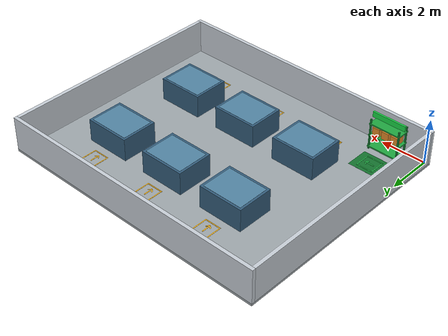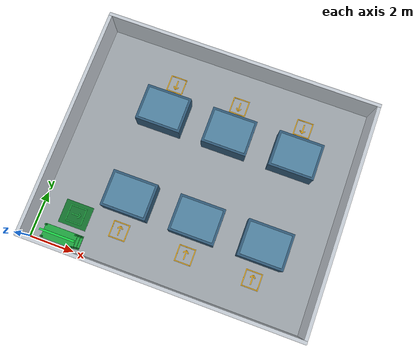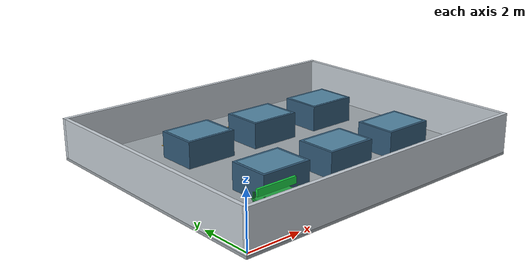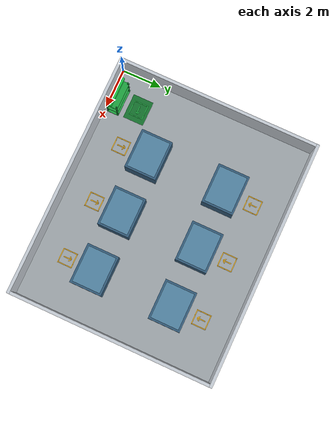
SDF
<?xml version='1.0' encoding='utf-8'?>
<sdf version="1.7">
  <world name="workshop_delivery_v1">
    <!-- Ground truth for experiment evaluation only; never used by AMCL or Nav2. -->
    <plugin name="gazebo_ros_state" filename="libgazebo_ros_state.so">
      <ros><namespace>/gazebo</namespace></ros>
      <update_rate>20.0</update_rate>
    </plugin>
    <!-- Two rows of three machines: A/B/C at y=3, D/E/F at y=7. Six visual-only docks correspond one-to-one. Material rack at (1.5,0.45); depot/spawn at (1.5,1.5). Coordinates use world frame. -->
    <gravity>0 0 -9.81</gravity>
    <physics name="default_physics" type="ode">
      <max_step_size>0.001</max_step_size>
      <real_time_update_rate>1000</real_time_update_rate>
    </physics>
    <scene>
      <ambient>0.55 0.55 0.55 1</ambient>
      <background>0.75 0.80 0.85 1</background>
      <shadows>true</shadows>
    </scene>
    <light name="sun" type="directional">
      <pose>0 0 12 0 0 0</pose>
      <diffuse>0.85 0.85 0.85 1</diffuse>
      <specular>0.2 0.2 0.2 1</specular>
      <direction>-0.4 0.2 -0.9</direction>
      <cast_shadows>true</cast_shadows>
      <attenuation>
        <range>1000</range>
        <constant>0.9</constant>
        <linear>0.01</linear>
        <quadratic>0.001</quadratic>
      </attenuation>
    </light>
    <gui fullscreen="0">
      <camera name="overview">
        <pose>15 -8 16 0 0.82 2.18</pose>
        <view_controller>orbit</view_controller>
      </camera>
    </gui>
    <model name="workshop_floor">
      <static>true</static>
      <pose>6 5 -0.05 0 0 0</pose>
      <link name="body">
        <collision name="slab_collision">
          <pose>0 0 0 0 0 0</pose>
          <geometry>
            <box>
              <size>12.3 10.3 0.1</size>
            </box>
          </geometry>
        </collision>
        <visual name="slab">
          <pose>0 0 0 0 0 0</pose>
          <geometry>
            <box>
              <size>12.3 10.3 0.1</size>
            </box>
          </geometry>
          <material>
            <ambient>0.62 0.65 0.67 1</ambient>
            <diffuse>0.62 0.65 0.67 1</diffuse>
          </material>
        </visual>
      </link>
    </model>
    <model name="wall_south">
      <static>true</static>
      <pose>6 -0.075 0.75 0 0 0</pose>
      <link name="body">
        <collision name="wall_collision">
          <pose>0 0 0 0 0 0</pose>
          <geometry>
            <box>
              <size>12.3 0.15 1.5</size>
            </box>
          </geometry>
        </collision>
        <visual name="wall">
          <pose>0 0 0 0 0 0</pose>
          <geometry>
            <box>
              <size>12.3 0.15 1.5</size>
            </box>
          </geometry>
          <material>
            <ambient>0.78 0.81 0.84 1</ambient>
            <diffuse>0.78 0.81 0.84 1</diffuse>
          </material>
        </visual>
      </link>
    </model>
    <model name="wall_north">
      <static>true</static>
      <pose>6 10.075 0.75 0 0 0</pose>
      <link name="body">
        <collision name="wall_collision">
          <pose>0 0 0 0 0 0</pose>
          <geometry>
            <box>
              <size>12.3 0.15 1.5</size>
            </box>
          </geometry>
        </collision>
        <visual name="wall">
          <pose>0 0 0 0 0 0</pose>
          <geometry>
            <box>
              <size>12.3 0.15 1.5</size>
            </box>
          </geometry>
          <material>
            <ambient>0.78 0.81 0.84 1</ambient>
            <diffuse>0.78 0.81 0.84 1</diffuse>
          </material>
        </visual>
      </link>
    </model>
    <model name="wall_west">
      <static>true</static>
      <pose>-0.075 5 0.75 0 0 0</pose>
      <link name="body">
        <collision name="wall_collision">
          <pose>0 0 0 0 0 0</pose>
          <geometry>
            <box>
              <size>0.15 10 1.5</size>
            </box>
          </geometry>
        </collision>
        <visual name="wall">
          <pose>0 0 0 0 0 0</pose>
          <geometry>
            <box>
              <size>0.15 10 1.5</size>
            </box>
          </geometry>
          <material>
            <ambient>0.78 0.81 0.84 1</ambient>
            <diffuse>0.78 0.81 0.84 1</diffuse>
          </material>
        </visual>
      </link>
    </model>
    <model name="wall_east">
      <static>true</static>
      <pose>12.075 5 0.75 0 0 0</pose>
      <link name="body">
        <collision name="wall_collision">
          <pose>0 0 0 0 0 0</pose>
          <geometry>
            <box>
              <size>0.15 10 1.5</size>
            </box>
          </geometry>
        </collision>
        <visual name="wall">
          <pose>0 0 0 0 0 0</pose>
          <geometry>
            <box>
              <size>0.15 10 1.5</size>
            </box>
          </geometry>
          <material>
            <ambient>0.78 0.81 0.84 1</ambient>
            <diffuse>0.78 0.81 0.84 1</diffuse>
          </material>
        </visual>
      </link>
    </model>
    <model name="dock_depot">
      <static>true</static>
      <pose>1.5 1.5 0 0 0 0</pose>
      <link name="body">
        <visual name="border_0">
          <pose>0 0.35 0.006 0 0 0</pose>
          <geometry>
            <box>
              <size>0.74 0.04 0.008</size>
            </box>
          </geometry>
          <material>
            <ambient>0.15 0.75 0.3 1</ambient>
            <diffuse>0.15 0.75 0.3 1</diffuse>
          </material>
          <cast_shadows>false</cast_shadows>
        </visual>
        <visual name="border_1">
          <pose>0 -0.35 0.006 0 0 0</pose>
          <geometry>
            <box>
              <size>0.74 0.04 0.008</size>
            </box>
          </geometry>
          <material>
            <ambient>0.15 0.75 0.3 1</ambient>
            <diffuse>0.15 0.75 0.3 1</diffuse>
          </material>
          <cast_shadows>false</cast_shadows>
        </visual>
        <visual name="border_2">
          <pose>0.35 0 0.006 0 0 0</pose>
          <geometry>
            <box>
              <size>0.04 0.66 0.008</size>
            </box>
          </geometry>
          <material>
            <ambient>0.15 0.75 0.3 1</ambient>
            <diffuse>0.15 0.75 0.3 1</diffuse>
          </material>
          <cast_shadows>false</cast_shadows>
        </visual>
        <visual name="border_3">
          <pose>-0.35 0 0.006 0 0 0</pose>
          <geometry>
            <box>
              <size>0.04 0.66 0.008</size>
            </box>
          </geometry>
          <material>
            <ambient>0.15 0.75 0.3 1</ambient>
            <diffuse>0.15 0.75 0.3 1</diffuse>
          </material>
          <cast_shadows>false</cast_shadows>
        </visual>
        <visual name="heading">
          <pose>0 0 0.008 0 0 0</pose>
          <geometry>
            <box>
              <size>0.4 0.045 0.008</size>
            </box>
          </geometry>
          <material>
            <ambient>0.15 0.75 0.3 1</ambient>
            <diffuse>0.15 0.75 0.3 1</diffuse>
          </material>
          <cast_shadows>false</cast_shadows>
        </visual>
        <visual name="arrow_0">
          <pose>0.15 -0.055 0.008 0 0 0.785398</pose>
          <geometry>
            <box>
              <size>0.16 0.045 0.008</size>
            </box>
          </geometry>
          <material>
            <ambient>0.15 0.75 0.3 1</ambient>
            <diffuse>0.15 0.75 0.3 1</diffuse>
          </material>
          <cast_shadows>false</cast_shadows>
        </visual>
        <visual name="arrow_1">
          <pose>0.15 0.055 0.008 0 0 -0.785398</pose>
          <geometry>
            <box>
              <size>0.16 0.045 0.008</size>
            </box>
          </geometry>
          <material>
            <ambient>0.15 0.75 0.3 1</ambient>
            <diffuse>0.15 0.75 0.3 1</diffuse>
          </material>
          <cast_shadows>false</cast_shadows>
        </visual>
      </link>
    </model>
    <model name="dock_S1">
      <static>true</static>
      <pose>3.5 1.5 0 0 0 1.57079632679</pose>
      <link name="body">
        <visual name="border_0">
          <pose>0 0.35 0.006 0 0 0</pose>
          <geometry>
            <box>
              <size>0.74 0.04 0.008</size>
            </box>
          </geometry>
          <material>
            <ambient>0.98 0.72 0.10 1</ambient>
            <diffuse>0.98 0.72 0.10 1</diffuse>
          </material>
          <cast_shadows>false</cast_shadows>
        </visual>
        <visual name="border_1">
          <pose>0 -0.35 0.006 0 0 0</pose>
          <geometry>
            <box>
              <size>0.74 0.04 0.008</size>
            </box>
          </geometry>
          <material>
            <ambient>0.98 0.72 0.10 1</ambient>
            <diffuse>0.98 0.72 0.10 1</diffuse>
          </material>
          <cast_shadows>false</cast_shadows>
        </visual>
        <visual name="border_2">
          <pose>0.35 0 0.006 0 0 0</pose>
          <geometry>
            <box>
              <size>0.04 0.66 0.008</size>
            </box>
          </geometry>
          <material>
            <ambient>0.98 0.72 0.10 1</ambient>
            <diffuse>0.98 0.72 0.10 1</diffuse>
          </material>
          <cast_shadows>false</cast_shadows>
        </visual>
        <visual name="border_3">
          <pose>-0.35 0 0.006 0 0 0</pose>
          <geometry>
            <box>
              <size>0.04 0.66 0.008</size>
            </box>
          </geometry>
          <material>
            <ambient>0.98 0.72 0.10 1</ambient>
            <diffuse>0.98 0.72 0.10 1</diffuse>
          </material>
          <cast_shadows>false</cast_shadows>
        </visual>
        <visual name="heading">
          <pose>0 0 0.008 0 0 0</pose>
          <geometry>
            <box>
              <size>0.4 0.045 0.008</size>
            </box>
          </geometry>
          <material>
            <ambient>0.98 0.72 0.10 1</ambient>
            <diffuse>0.98 0.72 0.10 1</diffuse>
          </material>
          <cast_shadows>false</cast_shadows>
        </visual>
        <visual name="arrow_0">
          <pose>0.15 -0.055 0.008 0 0 0.785398</pose>
          <geometry>
            <box>
              <size>0.16 0.045 0.008</size>
            </box>
          </geometry>
          <material>
            <ambient>0.98 0.72 0.10 1</ambient>
            <diffuse>0.98 0.72 0.10 1</diffuse>
          </material>
          <cast_shadows>false</cast_shadows>
        </visual>
        <visual name="arrow_1">
          <pose>0.15 0.055 0.008 0 0 -0.785398</pose>
          <geometry>
            <box>
              <size>0.16 0.045 0.008</size>
            </box>
          </geometry>
          <material>
            <ambient>0.98 0.72 0.10 1</ambient>
            <diffuse>0.98 0.72 0.10 1</diffuse>
          </material>
          <cast_shadows>false</cast_shadows>
        </visual>
      </link>
    </model>
    <model name="dock_S2">
      <static>true</static>
      <pose>6.5 1.5 0 0 0 1.57079632679</pose>
      <link name="body">
        <visual name="border_0">
          <pose>0 0.35 0.006 0 0 0</pose>
          <geometry>
            <box>
              <size>0.74 0.04 0.008</size>
            </box>
          </geometry>
          <material>
            <ambient>0.98 0.72 0.10 1</ambient>
            <diffuse>0.98 0.72 0.10 1</diffuse>
          </material>
          <cast_shadows>false</cast_shadows>
        </visual>
        <visual name="border_1">
          <pose>0 -0.35 0.006 0 0 0</pose>
          <geometry>
            <box>
              <size>0.74 0.04 0.008</size>
            </box>
          </geometry>
          <material>
            <ambient>0.98 0.72 0.10 1</ambient>
            <diffuse>0.98 0.72 0.10 1</diffuse>
          </material>
          <cast_shadows>false</cast_shadows>
        </visual>
        <visual name="border_2">
          <pose>0.35 0 0.006 0 0 0</pose>
          <geometry>
            <box>
              <size>0.04 0.66 0.008</size>
            </box>
          </geometry>
          <material>
            <ambient>0.98 0.72 0.10 1</ambient>
            <diffuse>0.98 0.72 0.10 1</diffuse>
          </material>
          <cast_shadows>false</cast_shadows>
        </visual>
        <visual name="border_3">
          <pose>-0.35 0 0.006 0 0 0</pose>
          <geometry>
            <box>
              <size>0.04 0.66 0.008</size>
            </box>
          </geometry>
          <material>
            <ambient>0.98 0.72 0.10 1</ambient>
            <diffuse>0.98 0.72 0.10 1</diffuse>
          </material>
          <cast_shadows>false</cast_shadows>
        </visual>
        <visual name="heading">
          <pose>0 0 0.008 0 0 0</pose>
          <geometry>
            <box>
              <size>0.4 0.045 0.008</size>
            </box>
          </geometry>
          <material>
            <ambient>0.98 0.72 0.10 1</ambient>
            <diffuse>0.98 0.72 0.10 1</diffuse>
          </material>
          <cast_shadows>false</cast_shadows>
        </visual>
        <visual name="arrow_0">
          <pose>0.15 -0.055 0.008 0 0 0.785398</pose>
          <geometry>
            <box>
              <size>0.16 0.045 0.008</size>
            </box>
          </geometry>
          <material>
            <ambient>0.98 0.72 0.10 1</ambient>
            <diffuse>0.98 0.72 0.10 1</diffuse>
          </material>
          <cast_shadows>false</cast_shadows>
        </visual>
        <visual name="arrow_1">
          <pose>0.15 0.055 0.008 0 0 -0.785398</pose>
          <geometry>
            <box>
              <size>0.16 0.045 0.008</size>
            </box>
          </geometry>
          <material>
            <ambient>0.98 0.72 0.10 1</ambient>
            <diffuse>0.98 0.72 0.10 1</diffuse>
          </material>
          <cast_shadows>false</cast_shadows>
        </visual>
      </link>
    </model>
    <model name="dock_S3">
      <static>true</static>
      <pose>9.5 1.5 0 0 0 1.57079632679</pose>
      <link name="body">
        <visual name="border_0">
          <pose>0 0.35 0.006 0 0 0</pose>
          <geometry>
            <box>
              <size>0.74 0.04 0.008</size>
            </box>
          </geometry>
          <material>
            <ambient>0.98 0.72 0.10 1</ambient>
            <diffuse>0.98 0.72 0.10 1</diffuse>
          </material>
          <cast_shadows>false</cast_shadows>
        </visual>
        <visual name="border_1">
          <pose>0 -0.35 0.006 0 0 0</pose>
          <geometry>
            <box>
              <size>0.74 0.04 0.008</size>
            </box>
          </geometry>
          <material>
            <ambient>0.98 0.72 0.10 1</ambient>
            <diffuse>0.98 0.72 0.10 1</diffuse>
          </material>
          <cast_shadows>false</cast_shadows>
        </visual>
        <visual name="border_2">
          <pose>0.35 0 0.006 0 0 0</pose>
          <geometry>
            <box>
              <size>0.04 0.66 0.008</size>
            </box>
          </geometry>
          <material>
            <ambient>0.98 0.72 0.10 1</ambient>
            <diffuse>0.98 0.72 0.10 1</diffuse>
          </material>
          <cast_shadows>false</cast_shadows>
        </visual>
        <visual name="border_3">
          <pose>-0.35 0 0.006 0 0 0</pose>
          <geometry>
            <box>
              <size>0.04 0.66 0.008</size>
            </box>
          </geometry>
          <material>
            <ambient>0.98 0.72 0.10 1</ambient>
            <diffuse>0.98 0.72 0.10 1</diffuse>
          </material>
          <cast_shadows>false</cast_shadows>
        </visual>
        <visual name="heading">
          <pose>0 0 0.008 0 0 0</pose>
          <geometry>
            <box>
              <size>0.4 0.045 0.008</size>
            </box>
          </geometry>
          <material>
            <ambient>0.98 0.72 0.10 1</ambient>
            <diffuse>0.98 0.72 0.10 1</diffuse>
          </material>
          <cast_shadows>false</cast_shadows>
        </visual>
        <visual name="arrow_0">
          <pose>0.15 -0.055 0.008 0 0 0.785398</pose>
          <geometry>
            <box>
              <size>0.16 0.045 0.008</size>
            </box>
          </geometry>
          <material>
            <ambient>0.98 0.72 0.10 1</ambient>
            <diffuse>0.98 0.72 0.10 1</diffuse>
          </material>
          <cast_shadows>false</cast_shadows>
        </visual>
        <visual name="arrow_1">
          <pose>0.15 0.055 0.008 0 0 -0.785398</pose>
          <geometry>
            <box>
              <size>0.16 0.045 0.008</size>
            </box>
          </geometry>
          <material>
            <ambient>0.98 0.72 0.10 1</ambient>
            <diffuse>0.98 0.72 0.10 1</diffuse>
          </material>
          <cast_shadows>false</cast_shadows>
        </visual>
      </link>
    </model>
    <model name="dock_S4">
      <static>true</static>
      <pose>3.5 8.5 0 0 0 -1.57079632679</pose>
      <link name="body">
        <visual name="border_0">
          <pose>0 0.35 0.006 0 0 0</pose>
          <geometry>
            <box>
              <size>0.74 0.04 0.008</size>
            </box>
          </geometry>
          <material>
            <ambient>0.98 0.72 0.10 1</ambient>
            <diffuse>0.98 0.72 0.10 1</diffuse>
          </material>
          <cast_shadows>false</cast_shadows>
        </visual>
        <visual name="border_1">
          <pose>0 -0.35 0.006 0 0 0</pose>
          <geometry>
            <box>
              <size>0.74 0.04 0.008</size>
            </box>
          </geometry>
          <material>
            <ambient>0.98 0.72 0.10 1</ambient>
            <diffuse>0.98 0.72 0.10 1</diffuse>
          </material>
          <cast_shadows>false</cast_shadows>
        </visual>
        <visual name="border_2">
          <pose>0.35 0 0.006 0 0 0</pose>
          <geometry>
            <box>
              <size>0.04 0.66 0.008</size>
            </box>
          </geometry>
          <material>
            <ambient>0.98 0.72 0.10 1</ambient>
            <diffuse>0.98 0.72 0.10 1</diffuse>
          </material>
          <cast_shadows>false</cast_shadows>
        </visual>
        <visual name="border_3">
          <pose>-0.35 0 0.006 0 0 0</pose>
          <geometry>
            <box>
              <size>0.04 0.66 0.008</size>
            </box>
          </geometry>
          <material>
            <ambient>0.98 0.72 0.10 1</ambient>
            <diffuse>0.98 0.72 0.10 1</diffuse>
          </material>
          <cast_shadows>false</cast_shadows>
        </visual>
        <visual name="heading">
          <pose>0 0 0.008 0 0 0</pose>
          <geometry>
            <box>
              <size>0.4 0.045 0.008</size>
            </box>
          </geometry>
          <material>
            <ambient>0.98 0.72 0.10 1</ambient>
            <diffuse>0.98 0.72 0.10 1</diffuse>
          </material>
          <cast_shadows>false</cast_shadows>
        </visual>
        <visual name="arrow_0">
          <pose>0.15 -0.055 0.008 0 0 0.785398</pose>
          <geometry>
            <box>
              <size>0.16 0.045 0.008</size>
            </box>
          </geometry>
          <material>
            <ambient>0.98 0.72 0.10 1</ambient>
            <diffuse>0.98 0.72 0.10 1</diffuse>
          </material>
          <cast_shadows>false</cast_shadows>
        </visual>
        <visual name="arrow_1">
          <pose>0.15 0.055 0.008 0 0 -0.785398</pose>
          <geometry>
            <box>
              <size>0.16 0.045 0.008</size>
            </box>
          </geometry>
          <material>
            <ambient>0.98 0.72 0.10 1</ambient>
            <diffuse>0.98 0.72 0.10 1</diffuse>
          </material>
          <cast_shadows>false</cast_shadows>
        </visual>
      </link>
    </model>
    <model name="dock_S5">
      <static>true</static>
      <pose>6.5 8.5 0 0 0 -1.57079632679</pose>
      <link name="body">
        <visual name="border_0">
          <pose>0 0.35 0.006 0 0 0</pose>
          <geometry>
            <box>
              <size>0.74 0.04 0.008</size>
            </box>
          </geometry>
          <material>
            <ambient>0.98 0.72 0.10 1</ambient>
            <diffuse>0.98 0.72 0.10 1</diffuse>
          </material>
          <cast_shadows>false</cast_shadows>
        </visual>
        <visual name="border_1">
          <pose>0 -0.35 0.006 0 0 0</pose>
          <geometry>
            <box>
              <size>0.74 0.04 0.008</size>
            </box>
          </geometry>
          <material>
            <ambient>0.98 0.72 0.10 1</ambient>
            <diffuse>0.98 0.72 0.10 1</diffuse>
          </material>
          <cast_shadows>false</cast_shadows>
        </visual>
        <visual name="border_2">
          <pose>0.35 0 0.006 0 0 0</pose>
          <geometry>
            <box>
              <size>0.04 0.66 0.008</size>
            </box>
          </geometry>
          <material>
            <ambient>0.98 0.72 0.10 1</ambient>
            <diffuse>0.98 0.72 0.10 1</diffuse>
          </material>
          <cast_shadows>false</cast_shadows>
        </visual>
        <visual name="border_3">
          <pose>-0.35 0 0.006 0 0 0</pose>
          <geometry>
            <box>
              <size>0.04 0.66 0.008</size>
            </box>
          </geometry>
          <material>
            <ambient>0.98 0.72 0.10 1</ambient>
            <diffuse>0.98 0.72 0.10 1</diffuse>
          </material>
          <cast_shadows>false</cast_shadows>
        </visual>
        <visual name="heading">
          <pose>0 0 0.008 0 0 0</pose>
          <geometry>
            <box>
              <size>0.4 0.045 0.008</size>
            </box>
          </geometry>
          <material>
            <ambient>0.98 0.72 0.10 1</ambient>
            <diffuse>0.98 0.72 0.10 1</diffuse>
          </material>
          <cast_shadows>false</cast_shadows>
        </visual>
        <visual name="arrow_0">
          <pose>0.15 -0.055 0.008 0 0 0.785398</pose>
          <geometry>
            <box>
              <size>0.16 0.045 0.008</size>
            </box>
          </geometry>
          <material>
            <ambient>0.98 0.72 0.10 1</ambient>
            <diffuse>0.98 0.72 0.10 1</diffuse>
          </material>
          <cast_shadows>false</cast_shadows>
        </visual>
        <visual name="arrow_1">
          <pose>0.15 0.055 0.008 0 0 -0.785398</pose>
          <geometry>
            <box>
              <size>0.16 0.045 0.008</size>
            </box>
          </geometry>
          <material>
            <ambient>0.98 0.72 0.10 1</ambient>
            <diffuse>0.98 0.72 0.10 1</diffuse>
          </material>
          <cast_shadows>false</cast_shadows>
        </visual>
      </link>
    </model>
    <model name="dock_S6">
      <static>true</static>
      <pose>9.5 8.5 0 0 0 -1.57079632679</pose>
      <link name="body">
        <visual name="border_0">
          <pose>0 0.35 0.006 0 0 0</pose>
          <geometry>
            <box>
              <size>0.74 0.04 0.008</size>
            </box>
          </geometry>
          <material>
            <ambient>0.98 0.72 0.10 1</ambient>
            <diffuse>0.98 0.72 0.10 1</diffuse>
          </material>
          <cast_shadows>false</cast_shadows>
        </visual>
        <visual name="border_1">
          <pose>0 -0.35 0.006 0 0 0</pose>
          <geometry>
            <box>
              <size>0.74 0.04 0.008</size>
            </box>
          </geometry>
          <material>
            <ambient>0.98 0.72 0.10 1</ambient>
            <diffuse>0.98 0.72 0.10 1</diffuse>
          </material>
          <cast_shadows>false</cast_shadows>
        </visual>
        <visual name="border_2">
          <pose>0.35 0 0.006 0 0 0</pose>
          <geometry>
            <box>
              <size>0.04 0.66 0.008</size>
            </box>
          </geometry>
          <material>
            <ambient>0.98 0.72 0.10 1</ambient>
            <diffuse>0.98 0.72 0.10 1</diffuse>
          </material>
          <cast_shadows>false</cast_shadows>
        </visual>
        <visual name="border_3">
          <pose>-0.35 0 0.006 0 0 0</pose>
          <geometry>
            <box>
              <size>0.04 0.66 0.008</size>
            </box>
          </geometry>
          <material>
            <ambient>0.98 0.72 0.10 1</ambient>
            <diffuse>0.98 0.72 0.10 1</diffuse>
          </material>
          <cast_shadows>false</cast_shadows>
        </visual>
        <visual name="heading">
          <pose>0 0 0.008 0 0 0</pose>
          <geometry>
            <box>
              <size>0.4 0.045 0.008</size>
            </box>
          </geometry>
          <material>
            <ambient>0.98 0.72 0.10 1</ambient>
            <diffuse>0.98 0.72 0.10 1</diffuse>
          </material>
          <cast_shadows>false</cast_shadows>
        </visual>
        <visual name="arrow_0">
          <pose>0.15 -0.055 0.008 0 0 0.785398</pose>
          <geometry>
            <box>
              <size>0.16 0.045 0.008</size>
            </box>
          </geometry>
          <material>
            <ambient>0.98 0.72 0.10 1</ambient>
            <diffuse>0.98 0.72 0.10 1</diffuse>
          </material>
          <cast_shadows>false</cast_shadows>
        </visual>
        <visual name="arrow_1">
          <pose>0.15 0.055 0.008 0 0 -0.785398</pose>
          <geometry>
            <box>
              <size>0.16 0.045 0.008</size>
            </box>
          </geometry>
          <material>
            <ambient>0.98 0.72 0.10 1</ambient>
            <diffuse>0.98 0.72 0.10 1</diffuse>
          </material>
          <cast_shadows>false</cast_shadows>
        </visual>
      </link>
    </model>
    <model name="equipment_A">
      <static>true</static>
      <pose>3.5 3 0.5 0 0 0</pose>
      <link name="body">
        <collision name="equipment_collision">
          <pose>0 0 0 0 0 0</pose>
          <geometry>
            <box>
              <size>2 1.6 1</size>
            </box>
          </geometry>
        </collision>
        <visual name="equipment">
          <pose>0 0 0 0 0 0</pose>
          <geometry>
            <box>
              <size>2 1.6 1</size>
            </box>
          </geometry>
          <material>
            <ambient>0.20 0.36 0.48 1</ambient>
            <diffuse>0.20 0.36 0.48 1</diffuse>
          </material>
        </visual>
        <visual name="top_panel">
          <pose>0 0 0.502 0 0 0</pose>
          <geometry>
            <box>
              <size>1.8 1.4 0.004</size>
            </box>
          </geometry>
          <material>
            <ambient>0.32 0.52 0.64 1</ambient>
            <diffuse>0.32 0.52 0.64 1</diffuse>
          </material>
          <cast_shadows>false</cast_shadows>
        </visual>
      </link>
    </model>
    <model name="equipment_B">
      <static>true</static>
      <pose>6.5 3 0.5 0 0 0</pose>
      <link name="body">
        <collision name="equipment_collision">
          <pose>0 0 0 0 0 0</pose>
          <geometry>
            <box>
              <size>2 1.6 1</size>
            </box>
          </geometry>
        </collision>
        <visual name="equipment">
          <pose>0 0 0 0 0 0</pose>
          <geometry>
            <box>
              <size>2 1.6 1</size>
            </box>
          </geometry>
          <material>
            <ambient>0.20 0.36 0.48 1</ambient>
            <diffuse>0.20 0.36 0.48 1</diffuse>
          </material>
        </visual>
        <visual name="top_panel">
          <pose>0 0 0.502 0 0 0</pose>
          <geometry>
            <box>
              <size>1.8 1.4 0.004</size>
            </box>
          </geometry>
          <material>
            <ambient>0.32 0.52 0.64 1</ambient>
            <diffuse>0.32 0.52 0.64 1</diffuse>
          </material>
          <cast_shadows>false</cast_shadows>
        </visual>
      </link>
    </model>
    <model name="equipment_C">
      <static>true</static>
      <pose>9.5 3 0.5 0 0 0</pose>
      <link name="body">
        <collision name="equipment_collision">
          <pose>0 0 0 0 0 0</pose>
          <geometry>
            <box>
              <size>2 1.6 1</size>
            </box>
          </geometry>
        </collision>
        <visual name="equipment">
          <pose>0 0 0 0 0 0</pose>
          <geometry>
            <box>
              <size>2 1.6 1</size>
            </box>
          </geometry>
          <material>
            <ambient>0.20 0.36 0.48 1</ambient>
            <diffuse>0.20 0.36 0.48 1</diffuse>
          </material>
        </visual>
        <visual name="top_panel">
          <pose>0 0 0.502 0 0 0</pose>
          <geometry>
            <box>
              <size>1.8 1.4 0.004</size>
            </box>
          </geometry>
          <material>
            <ambient>0.32 0.52 0.64 1</ambient>
            <diffuse>0.32 0.52 0.64 1</diffuse>
          </material>
          <cast_shadows>false</cast_shadows>
        </visual>
      </link>
    </model>
    <model name="equipment_D">
      <static>true</static>
      <pose>3.5 7 0.5 0 0 0</pose>
      <link name="body">
        <collision name="equipment_collision">
          <pose>0 0 0 0 0 0</pose>
          <geometry>
            <box>
              <size>2 1.6 1</size>
            </box>
          </geometry>
        </collision>
        <visual name="equipment">
          <pose>0 0 0 0 0 0</pose>
          <geometry>
            <box>
              <size>2 1.6 1</size>
            </box>
          </geometry>
          <material>
            <ambient>0.20 0.36 0.48 1</ambient>
            <diffuse>0.20 0.36 0.48 1</diffuse>
          </material>
        </visual>
        <visual name="top_panel">
          <pose>0 0 0.502 0 0 0</pose>
          <geometry>
            <box>
              <size>1.8 1.4 0.004</size>
            </box>
          </geometry>
          <material>
            <ambient>0.32 0.52 0.64 1</ambient>
            <diffuse>0.32 0.52 0.64 1</diffuse>
          </material>
          <cast_shadows>false</cast_shadows>
        </visual>
      </link>
    </model>
    <model name="equipment_E">
      <static>true</static>
      <pose>6.5 7 0.5 0 0 0</pose>
      <link name="body">
        <collision name="equipment_collision">
          <pose>0 0 0 0 0 0</pose>
          <geometry>
            <box>
              <size>2 1.6 1</size>
            </box>
          </geometry>
        </collision>
        <visual name="equipment">
          <pose>0 0 0 0 0 0</pose>
          <geometry>
            <box>
              <size>2 1.6 1</size>
            </box>
          </geometry>
          <material>
            <ambient>0.20 0.36 0.48 1</ambient>
            <diffuse>0.20 0.36 0.48 1</diffuse>
          </material>
        </visual>
        <visual name="top_panel">
          <pose>0 0 0.502 0 0 0</pose>
          <geometry>
            <box>
              <size>1.8 1.4 0.004</size>
            </box>
          </geometry>
          <material>
            <ambient>0.32 0.52 0.64 1</ambient>
            <diffuse>0.32 0.52 0.64 1</diffuse>
          </material>
          <cast_shadows>false</cast_shadows>
        </visual>
      </link>
    </model>
    <model name="equipment_F">
      <static>true</static>
      <pose>9.5 7 0.5 0 0 0</pose>
      <link name="body">
        <collision name="equipment_collision">
          <pose>0 0 0 0 0 0</pose>
          <geometry>
            <box>
              <size>2 1.6 1</size>
            </box>
          </geometry>
        </collision>
        <visual name="equipment">
          <pose>0 0 0 0 0 0</pose>
          <geometry>
            <box>
              <size>2 1.6 1</size>
            </box>
          </geometry>
          <material>
            <ambient>0.20 0.36 0.48 1</ambient>
            <diffuse>0.20 0.36 0.48 1</diffuse>
          </material>
        </visual>
        <visual name="top_panel">
          <pose>0 0 0.502 0 0 0</pose>
          <geometry>
            <box>
              <size>1.8 1.4 0.004</size>
            </box>
          </geometry>
          <material>
            <ambient>0.32 0.52 0.64 1</ambient>
            <diffuse>0.32 0.52 0.64 1</diffuse>
          </material>
          <cast_shadows>false</cast_shadows>
        </visual>
      </link>
    </model>
    <model name="material_station_rack">
      <static>true</static>
      <pose>1.5 0.45 0 0 0 0</pose>
      <link name="rack">
        <collision name="post_0_0_collision">
          <pose>-0.65 -0.25 0.7 0 0 0</pose>
          <geometry>
            <box>
              <size>0.06 0.06 1.4</size>
            </box>
          </geometry>
        </collision>
        <visual name="post_0_0_visual">
          <pose>-0.65 -0.25 0.7 0 0 0</pose>
          <geometry>
            <box>
              <size>0.06 0.06 1.4</size>
            </box>
          </geometry>
          <material>
            <ambient>0.08 0.5 0.2 1</ambient>
            <diffuse>0.08 0.5 0.2 1</diffuse>
          </material>
        </visual>
        <collision name="post_0_1_collision">
          <pose>-0.65 0.25 0.7 0 0 0</pose>
          <geometry>
            <box>
              <size>0.06 0.06 1.4</size>
            </box>
          </geometry>
        </collision>
        <visual name="post_0_1_visual">
          <pose>-0.65 0.25 0.7 0 0 0</pose>
          <geometry>
            <box>
              <size>0.06 0.06 1.4</size>
            </box>
          </geometry>
          <material>
            <ambient>0.08 0.5 0.2 1</ambient>
            <diffuse>0.08 0.5 0.2 1</diffuse>
          </material>
        </visual>
        <collision name="post_1_0_collision">
          <pose>0.65 -0.25 0.7 0 0 0</pose>
          <geometry>
            <box>
              <size>0.06 0.06 1.4</size>
            </box>
          </geometry>
        </collision>
        <visual name="post_1_0_visual">
          <pose>0.65 -0.25 0.7 0 0 0</pose>
          <geometry>
            <box>
              <size>0.06 0.06 1.4</size>
            </box>
          </geometry>
          <material>
            <ambient>0.08 0.5 0.2 1</ambient>
            <diffuse>0.08 0.5 0.2 1</diffuse>
          </material>
        </visual>
        <collision name="post_1_1_collision">
          <pose>0.65 0.25 0.7 0 0 0</pose>
          <geometry>
            <box>
              <size>0.06 0.06 1.4</size>
            </box>
          </geometry>
        </collision>
        <visual name="post_1_1_visual">
          <pose>0.65 0.25 0.7 0 0 0</pose>
          <geometry>
            <box>
              <size>0.06 0.06 1.4</size>
            </box>
          </geometry>
          <material>
            <ambient>0.08 0.5 0.2 1</ambient>
            <diffuse>0.08 0.5 0.2 1</diffuse>
          </material>
        </visual>
        <collision name="shelf_0_collision">
          <pose>0 0 0.12 0 0 0</pose>
          <geometry>
            <box>
              <size>1.4 0.6 0.06</size>
            </box>
          </geometry>
        </collision>
        <visual name="shelf_0_visual">
          <pose>0 0 0.12 0 0 0</pose>
          <geometry>
            <box>
              <size>1.4 0.6 0.06</size>
            </box>
          </geometry>
          <material>
            <ambient>0.12 0.65 0.25 1</ambient>
            <diffuse>0.12 0.65 0.25 1</diffuse>
          </material>
        </visual>
        <collision name="shelf_1_collision">
          <pose>0 0 0.65 0 0 0</pose>
          <geometry>
            <box>
              <size>1.4 0.6 0.06</size>
            </box>
          </geometry>
        </collision>
        <visual name="shelf_1_visual">
          <pose>0 0 0.65 0 0 0</pose>
          <geometry>
            <box>
              <size>1.4 0.6 0.06</size>
            </box>
          </geometry>
          <material>
            <ambient>0.12 0.65 0.25 1</ambient>
            <diffuse>0.12 0.65 0.25 1</diffuse>
          </material>
        </visual>
        <collision name="shelf_2_collision">
          <pose>0 0 1.18 0 0 0</pose>
          <geometry>
            <box>
              <size>1.4 0.6 0.06</size>
            </box>
          </geometry>
        </collision>
        <visual name="shelf_2_visual">
          <pose>0 0 1.18 0 0 0</pose>
          <geometry>
            <box>
              <size>1.4 0.6 0.06</size>
            </box>
          </geometry>
          <material>
            <ambient>0.12 0.65 0.25 1</ambient>
            <diffuse>0.12 0.65 0.25 1</diffuse>
          </material>
        </visual>
        <collision name="material_bin_0_collision">
          <pose>-0.42 0 0.85 0 0 0</pose>
          <geometry>
            <box>
              <size>0.32 0.42 0.34</size>
            </box>
          </geometry>
        </collision>
        <visual name="material_bin_0_visual">
          <pose>-0.42 0 0.85 0 0 0</pose>
          <geometry>
            <box>
              <size>0.32 0.42 0.34</size>
            </box>
          </geometry>
          <material>
            <ambient>0.9 0.55 0.16 1</ambient>
            <diffuse>0.9 0.55 0.16 1</diffuse>
          </material>
        </visual>
        <collision name="material_bin_1_collision">
          <pose>0 0 0.85 0 0 0</pose>
          <geometry>
            <box>
              <size>0.32 0.42 0.34</size>
            </box>
          </geometry>
        </collision>
        <visual name="material_bin_1_visual">
          <pose>0 0 0.85 0 0 0</pose>
          <geometry>
            <box>
              <size>0.32 0.42 0.34</size>
            </box>
          </geometry>
          <material>
            <ambient>0.9 0.55 0.16 1</ambient>
            <diffuse>0.9 0.55 0.16 1</diffuse>
          </material>
        </visual>
        <collision name="material_bin_2_collision">
          <pose>0.42 0 0.85 0 0 0</pose>
          <geometry>
            <box>
              <size>0.32 0.42 0.34</size>
            </box>
          </geometry>
        </collision>
        <visual name="material_bin_2_visual">
          <pose>0.42 0 0.85 0 0 0</pose>
          <geometry>
            <box>
              <size>0.32 0.42 0.34</size>
            </box>
          </geometry>
          <material>
            <ambient>0.9 0.55 0.16 1</ambient>
            <diffuse>0.9 0.55 0.16 1</diffuse>
          </material>
        </visual>
        <collision name="green_header_collision">
          <pose>0 0 1.48 0 0 0</pose>
          <geometry>
            <box>
              <size>1.5 0.08 0.24</size>
            </box>
          </geometry>
        </collision>
        <visual name="green_header_visual">
          <pose>0 0 1.48 0 0 0</pose>
          <geometry>
            <box>
              <size>1.5 0.08 0.24</size>
            </box>
          </geometry>
          <material>
            <ambient>0.1 0.85 0.28 1</ambient>
            <diffuse>0.1 0.85 0.28 1</diffuse>
          </material>
        </visual>
        <visual name="loading_zone_visual">
          <pose>0 1.05 0.002 0 0 0</pose>
          <geometry>
            <box>
              <size>1.25 1.05 0.003</size>
            </box>
          </geometry>
          <material>
            <ambient>0.08 0.45 0.18 1</ambient>
            <diffuse>0.08 0.45 0.18 1</diffuse>
          </material>
        </visual>
      </link>
    </model>
  </world>
</sdf>
